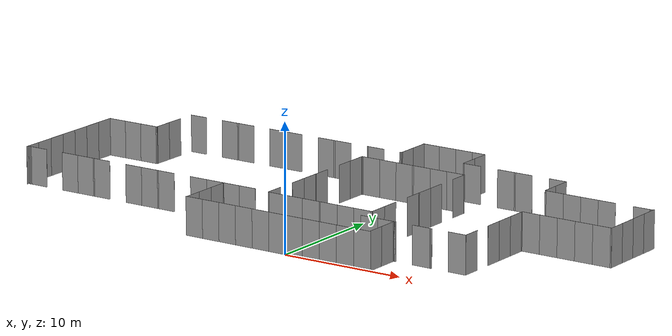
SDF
<sdf version="1.6">
 <world name="default">
  <model name="walls">
   <static>1</static>
   <link name="link">
    <visual name="visual_1">
     <pose>-8.25 0 1.5 0 -0 0</pose>
     <geometry><box><size>1.5 0.01 3</size></box></geometry>
     <material>
      <script>
       <uri>file://media/materials/scripts/</uri>
       <uri>file://media/materials/textures/</uri>
       <name>ServiceSim/PlainWall</name>
      </script>
     </material>
    </visual>
    <visual name="visual_2">
     <pose>-6.75 0 1.5 0 -0 0</pose>
     <geometry><box><size>1.5 0.01 3</size></box></geometry>
     <material>
      <script>
       <uri>file://media/materials/scripts/</uri>
       <uri>file://media/materials/textures/</uri>
       <name>ServiceSim/PlainWall</name>
      </script>
     </material>
    </visual>
    <visual name="visual_3">
     <pose>-5.25 0 1.5 0 -0 0</pose>
     <geometry><box><size>1.5 0.01 3</size></box></geometry>
     <material>
      <script>
       <uri>file://media/materials/scripts/</uri>
       <uri>file://media/materials/textures/</uri>
       <name>ServiceSim/PlainWall</name>
      </script>
     </material>
    </visual>
    <visual name="visual_4">
     <pose>-3.75 0 1.5 0 -0 0</pose>
     <geometry><box><size>1.5 0.01 3</size></box></geometry>
     <material>
      <script>
       <uri>file://media/materials/scripts/</uri>
       <uri>file://media/materials/textures/</uri>
       <name>ServiceSim/PlainWall</name>
      </script>
     </material>
    </visual>
    <visual name="visual_5">
     <pose>-2.25 0 1.5 0 -0 0</pose>
     <geometry><box><size>1.5 0.01 3</size></box></geometry>
     <material>
      <script>
       <uri>file://media/materials/scripts/</uri>
       <uri>file://media/materials/textures/</uri>
       <name>ServiceSim/PlainWall</name>
      </script>
     </material>
    </visual>
    <visual name="visual_6">
     <pose>-0.75 0 1.5 0 -0 0</pose>
     <geometry><box><size>1.5 0.01 3</size></box></geometry>
     <material>
      <script>
       <uri>file://media/materials/scripts/</uri>
       <uri>file://media/materials/textures/</uri>
       <name>ServiceSim/Elevator</name>
      </script>
     </material>
    </visual>
    <visual name="visual_7">
     <pose>0.75 0 1.5 0 -0 0</pose>
     <geometry><box><size>1.5 0.01 3</size></box></geometry>
     <material>
      <script>
       <uri>file://media/materials/scripts/</uri>
       <uri>file://media/materials/textures/</uri>
       <name>ServiceSim/Elevator</name>
      </script>
     </material>
    </visual>
    <visual name="visual_8">
     <pose>2.25 0 1.5 0 -0 0</pose>
     <geometry><box><size>1.5 0.01 3</size></box></geometry>
     <material>
      <script>
       <uri>file://media/materials/scripts/</uri>
       <uri>file://media/materials/textures/</uri>
       <name>ServiceSim/PlainWall</name>
      </script>
     </material>
    </visual>
    <visual name="visual_9">
     <pose>3.75 0 1.5 0 -0 0</pose>
     <geometry><box><size>1.5 0.01 3</size></box></geometry>
     <material>
      <script>
       <uri>file://media/materials/scripts/</uri>
       <uri>file://media/materials/textures/</uri>
       <name>ServiceSim/PlainWall</name>
      </script>
     </material>
    </visual>
    <visual name="visual_10">
     <pose>5.25 0 1.5 0 -0 0</pose>
     <geometry><box><size>1.5 0.01 3</size></box></geometry>
     <material>
      <script>
       <uri>file://media/materials/scripts/</uri>
       <uri>file://media/materials/textures/</uri>
       <name>ServiceSim/PlainWall</name>
      </script>
     </material>
    </visual>
    <visual name="visual_11">
     <pose>6.749 0 1.5 0 -0 0</pose>
     <geometry><box><size>1.5 0.01 3</size></box></geometry>
     <material>
      <script>
       <uri>file://media/materials/scripts/</uri>
       <uri>file://media/materials/textures/</uri>
       <name>ServiceSim/PlainWall</name>
      </script>
     </material>
    </visual>
    <visual name="visual_12">
     <pose>-8.25 4.6 1.5 0 -0 0</pose>
     <geometry><box><size>1.5 0.01 3</size></box></geometry>
     <material>
      <script>
       <uri>file://media/materials/scripts/</uri>
       <uri>file://media/materials/textures/</uri>
       <name>ServiceSim/PlainWall</name>
      </script>
     </material>
    </visual>
    <visual name="visual_13">
     <pose>-6.75 4.6 1.5 0 -0 0</pose>
     <geometry><box><size>1.5 0.01 3</size></box></geometry>
     <material>
      <script>
       <uri>file://media/materials/scripts/</uri>
       <uri>file://media/materials/textures/</uri>
       <name>ServiceSim/PlainWall</name>
      </script>
     </material>
    </visual>
    <visual name="visual_14">
     <pose>5.25 3.1 1.5 0 -0 0</pose>
     <geometry><box><size>1.5 0.01 3</size></box></geometry>
     <material>
      <script>
       <uri>file://media/materials/scripts/</uri>
       <uri>file://media/materials/textures/</uri>
       <name>ServiceSim/PlainWall</name>
      </script>
     </material>
    </visual>
    <visual name="visual_15">
     <pose>6.75 3.1 1.5 0 -0 0</pose>
     <geometry><box><size>1.5 0.01 3</size></box></geometry>
     <material>
      <script>
       <uri>file://media/materials/scripts/</uri>
       <uri>file://media/materials/textures/</uri>
       <name>ServiceSim/PlainWall</name>
      </script>
     </material>
    </visual>
    <visual name="visual_16">
     <pose>7.4 0.75 1.5 0 -0 1.5708</pose>
     <geometry><box><size>1.5 0.01 3</size></box></geometry>
     <material>
      <script>
       <uri>file://media/materials/scripts/</uri>
       <uri>file://media/materials/textures/</uri>
       <name>ServiceSim/PlainWall</name>
      </script>
     </material>
    </visual>
    <visual name="visual_17">
     <pose>7.4 2.25 1.5 0 -0 1.5708</pose>
     <geometry><box><size>1.5 0.01 3</size></box></geometry>
     <material>
      <script>
       <uri>file://media/materials/scripts/</uri>
       <uri>file://media/materials/textures/</uri>
       <name>ServiceSim/PlainWall</name>
      </script>
     </material>
    </visual>
    <visual name="visual_18">
     <pose>7.4 3.05 1.5 0 -0 1.5708</pose>
     <geometry><box><size>0.1 0.01 3</size></box></geometry>
     <material>
      <script>
       <uri>file://media/materials/scripts/</uri>
       <uri>file://media/materials/textures/</uri>
       <name>ServiceSim/PlainWall</name>
      </script>
     </material>
    </visual>
    <visual name="visual_19">
     <pose>7.45 3.1 1.5 0 -0 0</pose>
     <geometry><box><size>0.1 0.01 3</size></box></geometry>
     <material>
      <script>
       <uri>file://media/materials/scripts/</uri>
       <uri>file://media/materials/textures/</uri>
       <name>ServiceSim/PlainWall</name>
      </script>
     </material>
    </visual>
    <visual name="visual_20">
     <pose>7.55 3.1 1.5 0 -0 0</pose>
     <geometry><box><size>0.1 0.01 3</size></box></geometry>
     <material>
      <script>
       <uri>file://media/materials/scripts/</uri>
       <uri>file://media/materials/textures/</uri>
       <name>ServiceSim/PlainWall</name>
      </script>
     </material>
    </visual>
    <visual name="visual_21">
     <pose>9.75 3.1 1.5 0 -0 0</pose>
     <geometry><box><size>1.5 0.01 3</size></box></geometry>
     <material>
      <script>
       <uri>file://media/materials/scripts/</uri>
       <uri>file://media/materials/textures/</uri>
       <name>ServiceSim/PlainWall</name>
      </script>
     </material>
    </visual>
    <visual name="visual_22">
     <pose>10.55 3.1 1.5 0 -0 0</pose>
     <geometry><box><size>0.1 0.01 3</size></box></geometry>
     <material>
      <script>
       <uri>file://media/materials/scripts/</uri>
       <uri>file://media/materials/textures/</uri>
       <name>ServiceSim/PlainWall</name>
      </script>
     </material>
    </visual>
    <visual name="visual_23">
     <pose>10.65 3.1 1.5 0 -0 0</pose>
     <geometry><box><size>0.1 0.01 3</size></box></geometry>
     <material>
      <script>
       <uri>file://media/materials/scripts/</uri>
       <uri>file://media/materials/textures/</uri>
       <name>ServiceSim/PlainWall</name>
      </script>
     </material>
    </visual>
    <visual name="visual_24">
     <pose>12.85 3.1 1.5 0 -0 0</pose>
     <geometry><box><size>1.5 0.01 3</size></box></geometry>
     <material>
      <script>
       <uri>file://media/materials/scripts/</uri>
       <uri>file://media/materials/textures/</uri>
       <name>ServiceSim/PlainWall</name>
      </script>
     </material>
    </visual>
    <visual name="visual_25">
     <pose>13.6 3.85 1.5 0 -0 1.5708</pose>
     <geometry><box><size>1.5 0.01 3</size></box></geometry>
     <material>
      <script>
       <uri>file://media/materials/scripts/</uri>
       <uri>file://media/materials/textures/</uri>
       <name>ServiceSim/PlainWall</name>
      </script>
     </material>
    </visual>
    <visual name="visual_26">
     <pose>13.6 6.75 1.5 0 -0 1.5708</pose>
     <geometry><box><size>1.5 0.01 3</size></box></geometry>
     <material>
      <script>
       <uri>file://media/materials/scripts/</uri>
       <uri>file://media/materials/textures/</uri>
       <name>ServiceSim/PlainWall</name>
      </script>
     </material>
    </visual>
    <visual name="visual_27">
     <pose>13.6 8.25 1.5 0 -0 1.5708</pose>
     <geometry><box><size>1.5 0.01 3</size></box></geometry>
     <material>
      <script>
       <uri>file://media/materials/scripts/</uri>
       <uri>file://media/materials/textures/</uri>
       <name>ServiceSim/PlainWall</name>
      </script>
     </material>
    </visual>
    <visual name="visual_28">
     <pose>13.6 9.75 1.5 0 -0 1.5708</pose>
     <geometry><box><size>1.5 0.01 3</size></box></geometry>
     <material>
      <script>
       <uri>file://media/materials/scripts/</uri>
       <uri>file://media/materials/textures/</uri>
       <name>ServiceSim/PlainWall</name>
      </script>
     </material>
    </visual>
    <visual name="visual_29">
     <pose>13.6 10.55 1.5 0 -0 1.5708</pose>
     <geometry><box><size>0.1 0.01 3</size></box></geometry>
     <material>
      <script>
       <uri>file://media/materials/scripts/</uri>
       <uri>file://media/materials/textures/</uri>
       <name>ServiceSim/PlainWall</name>
      </script>
     </material>
    </visual>
    <visual name="visual_30">
     <pose>14.35 10.6 1.5 0 -0 0</pose>
     <geometry><box><size>1.5 0.01 3</size></box></geometry>
     <material>
      <script>
       <uri>file://media/materials/scripts/</uri>
       <uri>file://media/materials/textures/</uri>
       <name>ServiceSim/PlainWall</name>
      </script>
     </material>
    </visual>
    <visual name="visual_31">
     <pose>15.85 10.6 1.5 0 -0 0</pose>
     <geometry><box><size>1.5 0.01 3</size></box></geometry>
     <material>
      <script>
       <uri>file://media/materials/scripts/</uri>
       <uri>file://media/materials/textures/</uri>
       <name>ServiceSim/PlainWall</name>
      </script>
     </material>
    </visual>
    <visual name="visual_32">
     <pose>17.35 10.6 1.5 0 -0 0</pose>
     <geometry><box><size>1.5 0.01 3</size></box></geometry>
     <material>
      <script>
       <uri>file://media/materials/scripts/</uri>
       <uri>file://media/materials/textures/</uri>
       <name>ServiceSim/PlainWall</name>
      </script>
     </material>
    </visual>
    <visual name="visual_33">
     <pose>18.85 10.6 1.5 0 -0 0</pose>
     <geometry><box><size>1.5 0.01 3</size></box></geometry>
     <material>
      <script>
       <uri>file://media/materials/scripts/</uri>
       <uri>file://media/materials/textures/</uri>
       <name>ServiceSim/PlainWall</name>
      </script>
     </material>
    </visual>
    <visual name="visual_34">
     <pose>20.35 10.6 1.5 0 -0 0</pose>
     <geometry><box><size>1.5 0.01 3</size></box></geometry>
     <material>
      <script>
       <uri>file://media/materials/scripts/</uri>
       <uri>file://media/materials/textures/</uri>
       <name>ServiceSim/PlainWall</name>
      </script>
     </material>
    </visual>
    <visual name="visual_35">
     <pose>21.15 10.6 1.5 0 -0 0</pose>
     <geometry><box><size>0.1 0.01 3</size></box></geometry>
     <material>
      <script>
       <uri>file://media/materials/scripts/</uri>
       <uri>file://media/materials/textures/</uri>
       <name>ServiceSim/PlainWall</name>
      </script>
     </material>
    </visual>
    <visual name="visual_36">
     <pose>21.2 11.35 1.5 0 -0 1.5708</pose>
     <geometry><box><size>1.5 0.01 3</size></box></geometry>
     <material>
      <script>
       <uri>file://media/materials/scripts/</uri>
       <uri>file://media/materials/textures/</uri>
       <name>ServiceSim/PlainWall</name>
      </script>
     </material>
    </visual>
    <visual name="visual_37">
     <pose>21.2 12.85 1.5 0 -0 1.5708</pose>
     <geometry><box><size>1.5 0.01 3</size></box></geometry>
     <material>
      <script>
       <uri>file://media/materials/scripts/</uri>
       <uri>file://media/materials/textures/</uri>
       <name>ServiceSim/PlainWall</name>
      </script>
     </material>
    </visual>
    <visual name="visual_38">
     <pose>21.2 14.35 1.5 0 -0 1.5708</pose>
     <geometry><box><size>1.5 0.01 3</size></box></geometry>
     <material>
      <script>
       <uri>file://media/materials/scripts/</uri>
       <uri>file://media/materials/textures/</uri>
       <name>ServiceSim/PlainWall</name>
      </script>
     </material>
    </visual>
    <visual name="visual_39">
     <pose>21.2 15.85 1.5 0 -0 1.5708</pose>
     <geometry><box><size>1.5 0.01 3</size></box></geometry>
     <material>
      <script>
       <uri>file://media/materials/scripts/</uri>
       <uri>file://media/materials/textures/</uri>
       <name>ServiceSim/PlainWall</name>
      </script>
     </material>
    </visual>
    <visual name="visual_40">
     <pose>20.95 16.4 1.5 0 -0 0</pose>
     <geometry><box><size>0.1 0.01 3</size></box></geometry>
     <material>
      <script>
       <uri>file://media/materials/scripts/</uri>
       <uri>file://media/materials/textures/</uri>
       <name>ServiceSim/PlainWall</name>
      </script>
     </material>
    </visual>
    <visual name="visual_41">
     <pose>21.05 16.4 1.5 0 -0 0</pose>
     <geometry><box><size>0.1 0.01 3</size></box></geometry>
     <material>
      <script>
       <uri>file://media/materials/scripts/</uri>
       <uri>file://media/materials/textures/</uri>
       <name>ServiceSim/PlainWall</name>
      </script>
     </material>
    </visual>
    <visual name="visual_42">
     <pose>21.15 16.4 1.5 0 -0 0</pose>
     <geometry><box><size>0.1 0.01 3</size></box></geometry>
     <material>
      <script>
       <uri>file://media/materials/scripts/</uri>
       <uri>file://media/materials/textures/</uri>
       <name>ServiceSim/PlainWall</name>
      </script>
     </material>
    </visual>
    <visual name="visual_43">
     <pose>20.25 16.4 1.5 0 -0 0</pose>
     <geometry><box><size>1.5 0.01 3</size></box></geometry>
     <material>
      <script>
       <uri>file://media/materials/scripts/</uri>
       <uri>file://media/materials/textures/</uri>
       <name>ServiceSim/PlainWall</name>
      </script>
     </material>
    </visual>
    <visual name="visual_44">
     <pose>17.25 16.4 1.5 0 -0 0</pose>
     <geometry><box><size>1.5 0.01 3</size></box></geometry>
     <material>
      <script>
       <uri>file://media/materials/scripts/</uri>
       <uri>file://media/materials/textures/</uri>
       <name>ServiceSim/PlainWall</name>
      </script>
     </material>
    </visual>
    <visual name="visual_45">
     <pose>15.75 16.4 1.5 0 -0 0</pose>
     <geometry><box><size>1.5 0.01 3</size></box></geometry>
     <material>
      <script>
       <uri>file://media/materials/scripts/</uri>
       <uri>file://media/materials/textures/</uri>
       <name>ServiceSim/PlainWall</name>
      </script>
     </material>
    </visual>
    <visual name="visual_46">
     <pose>14.25 16.4 1.5 0 -0 0</pose>
     <geometry><box><size>1.5 0.01 3</size></box></geometry>
     <material>
      <script>
       <uri>file://media/materials/scripts/</uri>
       <uri>file://media/materials/textures/</uri>
       <name>ServiceSim/PlainWall</name>
      </script>
     </material>
    </visual>
    <visual name="visual_47">
     <pose>12.75 16.4 1.5 0 -0 0</pose>
     <geometry><box><size>1.5 0.01 3</size></box></geometry>
     <material>
      <script>
       <uri>file://media/materials/scripts/</uri>
       <uri>file://media/materials/textures/</uri>
       <name>ServiceSim/PlainWall</name>
      </script>
     </material>
    </visual>
    <visual name="visual_48">
     <pose>11.95 16.4 1.5 0 -0 0</pose>
     <geometry><box><size>0.1 0.01 3</size></box></geometry>
     <material>
      <script>
       <uri>file://media/materials/scripts/</uri>
       <uri>file://media/materials/textures/</uri>
       <name>ServiceSim/PlainWall</name>
      </script>
     </material>
    </visual>
    <visual name="visual_49">
     <pose>11.9 17.15 1.5 0 -0 1.5708</pose>
     <geometry><box><size>1.5 0.01 3</size></box></geometry>
     <material>
      <script>
       <uri>file://media/materials/scripts/</uri>
       <uri>file://media/materials/textures/</uri>
       <name>ServiceSim/PlainWall</name>
      </script>
     </material>
    </visual>
    <visual name="visual_50">
     <pose>11.9 18.65 1.5 0 -0 1.5708</pose>
     <geometry><box><size>1.5 0.01 3</size></box></geometry>
     <material>
      <script>
       <uri>file://media/materials/scripts/</uri>
       <uri>file://media/materials/textures/</uri>
       <name>ServiceSim/PlainWall</name>
      </script>
     </material>
    </visual>
    <visual name="visual_51">
     <pose>11.15 19.4 1.5 0 -0 0</pose>
     <geometry><box><size>1.5 0.01 3</size></box></geometry>
     <material>
      <script>
       <uri>file://media/materials/scripts/</uri>
       <uri>file://media/materials/textures/</uri>
       <name>ServiceSim/PlainWall</name>
      </script>
     </material>
    </visual>
    <visual name="visual_52">
     <pose>8.15 19.4 1.5 0 -0 0</pose>
     <geometry><box><size>1.5 0.01 3</size></box></geometry>
     <material>
      <script>
       <uri>file://media/materials/scripts/</uri>
       <uri>file://media/materials/textures/</uri>
       <name>ServiceSim/PlainWall</name>
      </script>
     </material>
    </visual>
    <visual name="visual_53">
     <pose>7.35 19.4 1.5 0 -0 0</pose>
     <geometry><box><size>0.1 0.01 3</size></box></geometry>
     <material>
      <script>
       <uri>file://media/materials/scripts/</uri>
       <uri>file://media/materials/textures/</uri>
       <name>ServiceSim/PlainWall</name>
      </script>
     </material>
    </visual>
    <visual name="visual_54">
     <pose>6.55 19.4 1.5 0 -0 0</pose>
     <geometry><box><size>1.5 0.01 3</size></box></geometry>
     <material>
      <script>
       <uri>file://media/materials/scripts/</uri>
       <uri>file://media/materials/textures/</uri>
       <name>ServiceSim/PlainWall</name>
      </script>
     </material>
    </visual>
    <visual name="visual_55">
     <pose>3.55 19.4 1.5 0 -0 0</pose>
     <geometry><box><size>1.5 0.01 3</size></box></geometry>
     <material>
      <script>
       <uri>file://media/materials/scripts/</uri>
       <uri>file://media/materials/textures/</uri>
       <name>ServiceSim/PlainWall</name>
      </script>
     </material>
    </visual>
    <visual name="visual_56">
     <pose>2.75 19.4 1.5 0 -0 0</pose>
     <geometry><box><size>0.1 0.01 3</size></box></geometry>
     <material>
      <script>
       <uri>file://media/materials/scripts/</uri>
       <uri>file://media/materials/textures/</uri>
       <name>ServiceSim/PlainWall</name>
      </script>
     </material>
    </visual>
    <visual name="visual_57">
     <pose>2.7 19.45 1.5 0 -0 1.5708</pose>
     <geometry><box><size>0.1 0.01 3</size></box></geometry>
     <material>
      <script>
       <uri>file://media/materials/scripts/</uri>
       <uri>file://media/materials/textures/</uri>
       <name>ServiceSim/PlainWall</name>
      </script>
     </material>
    </visual>
    <visual name="visual_58">
     <pose>2.7 20.25 1.5 0 -0 1.5708</pose>
     <geometry><box><size>1.5 0.01 3</size></box></geometry>
     <material>
      <script>
       <uri>file://media/materials/scripts/</uri>
       <uri>file://media/materials/textures/</uri>
       <name>ServiceSim/PlainWall</name>
      </script>
     </material>
    </visual>
    <visual name="visual_59">
     <pose>2.7 21.75 1.5 0 -0 1.5708</pose>
     <geometry><box><size>1.5 0.01 3</size></box></geometry>
     <material>
      <script>
       <uri>file://media/materials/scripts/</uri>
       <uri>file://media/materials/textures/</uri>
       <name>ServiceSim/PlainWall</name>
      </script>
     </material>
    </visual>
    <visual name="visual_60">
     <pose>1.95 22.5 1.5 0 -0 0</pose>
     <geometry><box><size>1.5 0.01 3</size></box></geometry>
     <material>
      <script>
       <uri>file://media/materials/scripts/</uri>
       <uri>file://media/materials/textures/</uri>
       <name>ServiceSim/PlainWall</name>
      </script>
     </material>
    </visual>
    <visual name="visual_61">
     <pose>0.75 22.5 1.5 0 -0 0</pose>
     <geometry><box><size>1.5 0.01 3</size></box></geometry>
     <material>
      <script>
       <uri>file://media/materials/scripts/</uri>
       <uri>file://media/materials/textures/</uri>
       <name>ServiceSim/PlainWall</name>
      </script>
     </material>
    </visual>
    <visual name="visual_62">
     <pose>-0.75 22.5 1.5 0 -0 0</pose>
     <geometry><box><size>1.5 0.01 3</size></box></geometry>
     <material>
      <script>
       <uri>file://media/materials/scripts/</uri>
       <uri>file://media/materials/textures/</uri>
       <name>ServiceSim/PlainWall</name>
      </script>
     </material>
    </visual>
    <visual name="visual_63">
     <pose>-2.25 22.5 1.5 0 -0 0</pose>
     <geometry><box><size>1.5 0.01 3</size></box></geometry>
     <material>
      <script>
       <uri>file://media/materials/scripts/</uri>
       <uri>file://media/materials/textures/</uri>
       <name>ServiceSim/Door</name>
      </script>
     </material>
    </visual>
    <visual name="visual_64">
     <pose>-2.9 21.75 1.5 0 -0 1.5708</pose>
     <geometry><box><size>1.5 0.01 3</size></box></geometry>
     <material>
      <script>
       <uri>file://media/materials/scripts/</uri>
       <uri>file://media/materials/textures/</uri>
       <name>ServiceSim/PlainWall</name>
      </script>
     </material>
    </visual>
    <visual name="visual_65">
     <pose>-2.9 20.25 1.5 0 -0 1.5708</pose>
     <geometry><box><size>1.5 0.01 3</size></box></geometry>
     <material>
      <script>
       <uri>file://media/materials/scripts/</uri>
       <uri>file://media/materials/textures/</uri>
       <name>ServiceSim/PlainWall</name>
      </script>
     </material>
    </visual>
    <visual name="visual_66">
     <pose>-2.9 19.45 1.5 0 -0 1.5708</pose>
     <geometry><box><size>0.1 0.01 3</size></box></geometry>
     <material>
      <script>
       <uri>file://media/materials/scripts/</uri>
       <uri>file://media/materials/textures/</uri>
       <name>ServiceSim/PlainWall</name>
      </script>
     </material>
    </visual>
    <visual name="visual_67">
     <pose>-2.95 19.4 1.5 0 -0 0</pose>
     <geometry><box><size>0.1 0.01 3</size></box></geometry>
     <material>
      <script>
       <uri>file://media/materials/scripts/</uri>
       <uri>file://media/materials/textures/</uri>
       <name>ServiceSim/PlainWall</name>
      </script>
     </material>
    </visual>
    <visual name="visual_68">
     <pose>-3.05 19.4 1.5 0 -0 0</pose>
     <geometry><box><size>0.1 0.01 3</size></box></geometry>
     <material>
      <script>
       <uri>file://media/materials/scripts/</uri>
       <uri>file://media/materials/textures/</uri>
       <name>ServiceSim/PlainWall</name>
      </script>
     </material>
    </visual>
    <visual name="visual_69">
     <pose>-5.25 19.4 1.5 0 -0 0</pose>
     <geometry><box><size>1.5 0.01 3</size></box></geometry>
     <material>
      <script>
       <uri>file://media/materials/scripts/</uri>
       <uri>file://media/materials/textures/</uri>
       <name>ServiceSim/PlainWall</name>
      </script>
     </material>
    </visual>
    <visual name="visual_70">
     <pose>-6.05 19.4 1.5 0 -0 0</pose>
     <geometry><box><size>0.1 0.01 3</size></box></geometry>
     <material>
      <script>
       <uri>file://media/materials/scripts/</uri>
       <uri>file://media/materials/textures/</uri>
       <name>ServiceSim/PlainWall</name>
      </script>
     </material>
    </visual>
    <visual name="visual_71">
     <pose>-8.35 19.4 1.5 0 -0 0</pose>
     <geometry><box><size>1.5 0.01 3</size></box></geometry>
     <material>
      <script>
       <uri>file://media/materials/scripts/</uri>
       <uri>file://media/materials/textures/</uri>
       <name>ServiceSim/PlainWall</name>
      </script>
     </material>
    </visual>
    <visual name="visual_72">
     <pose>-9.15 19.4 1.5 0 -0 0</pose>
     <geometry><box><size>0.1 0.01 3</size></box></geometry>
     <material>
      <script>
       <uri>file://media/materials/scripts/</uri>
       <uri>file://media/materials/textures/</uri>
       <name>ServiceSim/PlainWall</name>
      </script>
     </material>
    </visual>
    <visual name="visual_73">
     <pose>-9.95 19.4 1.5 0 -0 0</pose>
     <geometry><box><size>1.5 0.01 3</size></box></geometry>
     <material>
      <script>
       <uri>file://media/materials/scripts/</uri>
       <uri>file://media/materials/textures/</uri>
       <name>ServiceSim/PlainWall</name>
      </script>
     </material>
    </visual>
    <visual name="visual_74">
     <pose>-12.95 19.4 1.5 0 -0 0</pose>
     <geometry><box><size>1.5 0.01 3</size></box></geometry>
     <material>
      <script>
       <uri>file://media/materials/scripts/</uri>
       <uri>file://media/materials/textures/</uri>
       <name>ServiceSim/PlainWall</name>
      </script>
     </material>
    </visual>
    <visual name="visual_75">
     <pose>-13.75 19.4 1.5 0 -0 0</pose>
     <geometry><box><size>0.1 0.01 3</size></box></geometry>
     <material>
      <script>
       <uri>file://media/materials/scripts/</uri>
       <uri>file://media/materials/textures/</uri>
       <name>ServiceSim/PlainWall</name>
      </script>
     </material>
    </visual>
    <visual name="visual_76">
     <pose>-14.55 19.4 1.5 0 -0 0</pose>
     <geometry><box><size>1.5 0.01 3</size></box></geometry>
     <material>
      <script>
       <uri>file://media/materials/scripts/</uri>
       <uri>file://media/materials/textures/</uri>
       <name>ServiceSim/PlainWall</name>
      </script>
     </material>
    </visual>
    <visual name="visual_77">
     <pose>-18.35 19.4 1.5 0 -0 0</pose>
     <geometry><box><size>0.1 0.01 3</size></box></geometry>
     <material>
      <script>
       <uri>file://media/materials/scripts/</uri>
       <uri>file://media/materials/textures/</uri>
       <name>ServiceSim/PlainWall</name>
      </script>
     </material>
    </visual>
    <visual name="visual_78">
     <pose>-17.55 19.4 1.5 0 -0 0</pose>
     <geometry><box><size>1.5 0.01 3</size></box></geometry>
     <material>
      <script>
       <uri>file://media/materials/scripts/</uri>
       <uri>file://media/materials/textures/</uri>
       <name>ServiceSim/PlainWall</name>
      </script>
     </material>
    </visual>
    <visual name="visual_79">
     <pose>-19.15 19.4 1.5 0 -0 0</pose>
     <geometry><box><size>1.5 0.01 3</size></box></geometry>
     <material>
      <script>
       <uri>file://media/materials/scripts/</uri>
       <uri>file://media/materials/textures/</uri>
       <name>ServiceSim/PlainWall</name>
      </script>
     </material>
    </visual>
    <visual name="visual_80">
     <pose>-22.15 19.4 1.5 0 -0 0</pose>
     <geometry><box><size>1.5 0.01 3</size></box></geometry>
     <material>
      <script>
       <uri>file://media/materials/scripts/</uri>
       <uri>file://media/materials/textures/</uri>
       <name>ServiceSim/PlainWall</name>
      </script>
     </material>
    </visual>
    <visual name="visual_81">
     <pose>-22.9 17.25 1.5 0 -0 1.5708</pose>
     <geometry><box><size>1.5 0.01 3</size></box></geometry>
     <material>
      <script>
       <uri>file://media/materials/scripts/</uri>
       <uri>file://media/materials/textures/</uri>
       <name>ServiceSim/PlainWall</name>
      </script>
     </material>
    </visual>
    <visual name="visual_82">
     <pose>-22.9 15.75 1.5 0 -0 1.5708</pose>
     <geometry><box><size>1.5 0.01 3</size></box></geometry>
     <material>
      <script>
       <uri>file://media/materials/scripts/</uri>
       <uri>file://media/materials/textures/</uri>
       <name>ServiceSim/PlainWall</name>
      </script>
     </material>
    </visual>
    <visual name="visual_83">
     <pose>-22.9 14.95 1.5 0 -0 1.5708</pose>
     <geometry><box><size>0.1 0.01 3</size></box></geometry>
     <material>
      <script>
       <uri>file://media/materials/scripts/</uri>
       <uri>file://media/materials/textures/</uri>
       <name>ServiceSim/PlainWall</name>
      </script>
     </material>
    </visual>
    <visual name="visual_84">
     <pose>-22.95 14.9 1.5 0 -0 0</pose>
     <geometry><box><size>0.1 0.01 3</size></box></geometry>
     <material>
      <script>
       <uri>file://media/materials/scripts/</uri>
       <uri>file://media/materials/textures/</uri>
       <name>ServiceSim/PlainWall</name>
      </script>
     </material>
    </visual>
    <visual name="visual_85">
     <pose>-23.75 14.9 1.5 0 -0 0</pose>
     <geometry><box><size>1.5 0.01 3</size></box></geometry>
     <material>
      <script>
       <uri>file://media/materials/scripts/</uri>
       <uri>file://media/materials/textures/</uri>
       <name>ServiceSim/PlainWall</name>
      </script>
     </material>
    </visual>
    <visual name="visual_86">
     <pose>-25.25 14.9 1.5 0 -0 0</pose>
     <geometry><box><size>1.5 0.01 3</size></box></geometry>
     <material>
      <script>
       <uri>file://media/materials/scripts/</uri>
       <uri>file://media/materials/textures/</uri>
       <name>ServiceSim/PlainWall</name>
      </script>
     </material>
    </visual>
    <visual name="visual_87">
     <pose>-26.75 14.9 1.5 0 -0 0</pose>
     <geometry><box><size>1.5 0.01 3</size></box></geometry>
     <material>
      <script>
       <uri>file://media/materials/scripts/</uri>
       <uri>file://media/materials/textures/</uri>
       <name>ServiceSim/PlainWall</name>
      </script>
     </material>
    </visual>
    <visual name="visual_88">
     <pose>-27.5 14.15 1.5 0 -0 1.5708</pose>
     <geometry><box><size>1.5 0.01 3</size></box></geometry>
     <material>
      <script>
       <uri>file://media/materials/scripts/</uri>
       <uri>file://media/materials/textures/</uri>
       <name>ServiceSim/PlainWall</name>
      </script>
     </material>
    </visual>
    <visual name="visual_89">
     <pose>-27.5 12.65 1.5 0 -0 1.5708</pose>
     <geometry><box><size>1.5 0.01 3</size></box></geometry>
     <material>
      <script>
       <uri>file://media/materials/scripts/</uri>
       <uri>file://media/materials/textures/</uri>
       <name>ServiceSim/PlainWall</name>
      </script>
     </material>
    </visual>
    <visual name="visual_90">
     <pose>-27.5 11.15 1.5 0 -0 1.5708</pose>
     <geometry><box><size>1.5 0.01 3</size></box></geometry>
     <material>
      <script>
       <uri>file://media/materials/scripts/</uri>
       <uri>file://media/materials/textures/</uri>
       <name>ServiceSim/PlainWall</name>
      </script>
     </material>
    </visual>
    <visual name="visual_91">
     <pose>-27.5 9.65 1.5 0 -0 1.5708</pose>
     <geometry><box><size>1.5 0.01 3</size></box></geometry>
     <material>
      <script>
       <uri>file://media/materials/scripts/</uri>
       <uri>file://media/materials/textures/</uri>
       <name>ServiceSim/PlainWall</name>
      </script>
     </material>
    </visual>
    <visual name="visual_92">
     <pose>-27.5 8.15 1.5 0 -0 1.5708</pose>
     <geometry><box><size>1.5 0.01 3</size></box></geometry>
     <material>
      <script>
       <uri>file://media/materials/scripts/</uri>
       <uri>file://media/materials/textures/</uri>
       <name>ServiceSim/PlainWall</name>
      </script>
     </material>
    </visual>
    <visual name="visual_93">
     <pose>-27.5 6.65 1.5 0 -0 1.5708</pose>
     <geometry><box><size>1.5 0.01 3</size></box></geometry>
     <material>
      <script>
       <uri>file://media/materials/scripts/</uri>
       <uri>file://media/materials/textures/</uri>
       <name>ServiceSim/PlainWall</name>
      </script>
     </material>
    </visual>
    <visual name="visual_94">
     <pose>-27.5 5.15 1.5 0 -0 1.5708</pose>
     <geometry><box><size>1.5 0.01 3</size></box></geometry>
     <material>
      <script>
       <uri>file://media/materials/scripts/</uri>
       <uri>file://media/materials/textures/</uri>
       <name>ServiceSim/PlainWall</name>
      </script>
     </material>
    </visual>
    <visual name="visual_95">
     <pose>-27.45 4.6 1.5 0 -0 0</pose>
     <geometry><box><size>0.1 0.01 3</size></box></geometry>
     <material>
      <script>
       <uri>file://media/materials/scripts/</uri>
       <uri>file://media/materials/textures/</uri>
       <name>ServiceSim/PlainWall</name>
      </script>
     </material>
    </visual>
    <visual name="visual_96">
     <pose>-27.35 4.6 1.5 0 -0 0</pose>
     <geometry><box><size>0.1 0.01 3</size></box></geometry>
     <material>
      <script>
       <uri>file://media/materials/scripts/</uri>
       <uri>file://media/materials/textures/</uri>
       <name>ServiceSim/PlainWall</name>
      </script>
     </material>
    </visual>
    <visual name="visual_97">
     <pose>-27.25 4.6 1.5 0 -0 0</pose>
     <geometry><box><size>0.1 0.01 3</size></box></geometry>
     <material>
      <script>
       <uri>file://media/materials/scripts/</uri>
       <uri>file://media/materials/textures/</uri>
       <name>ServiceSim/PlainWall</name>
      </script>
     </material>
    </visual>
    <visual name="visual_98">
     <pose>-26.45 4.6 1.5 0 -0 0</pose>
     <geometry><box><size>1.5 0.01 3</size></box></geometry>
     <material>
      <script>
       <uri>file://media/materials/scripts/</uri>
       <uri>file://media/materials/textures/</uri>
       <name>ServiceSim/PlainWall</name>
      </script>
     </material>
    </visual>
    <visual name="visual_99">
     <pose>-23.45 4.6 1.5 0 -0 0</pose>
     <geometry><box><size>1.5 0.01 3</size></box></geometry>
     <material>
      <script>
       <uri>file://media/materials/scripts/</uri>
       <uri>file://media/materials/textures/</uri>
       <name>ServiceSim/PlainWall</name>
      </script>
     </material>
    </visual>
    <visual name="visual_100">
     <pose>-21.95 4.6 1.5 0 -0 0</pose>
     <geometry><box><size>1.5 0.01 3</size></box></geometry>
     <material>
      <script>
       <uri>file://media/materials/scripts/</uri>
       <uri>file://media/materials/textures/</uri>
       <name>ServiceSim/PlainWall</name>
      </script>
     </material>
    </visual>
    <visual name="visual_101">
     <pose>-21.15 4.6 1.5 0 -0 0</pose>
     <geometry><box><size>0.1 0.01 3</size></box></geometry>
     <material>
      <script>
       <uri>file://media/materials/scripts/</uri>
       <uri>file://media/materials/textures/</uri>
       <name>ServiceSim/PlainWall</name>
      </script>
     </material>
    </visual>
    <visual name="visual_102">
     <pose>-20.35 4.6 1.5 0 -0 0</pose>
     <geometry><box><size>1.5 0.01 3</size></box></geometry>
     <material>
      <script>
       <uri>file://media/materials/scripts/</uri>
       <uri>file://media/materials/textures/</uri>
       <name>ServiceSim/PlainWall</name>
      </script>
     </material>
    </visual>
    <visual name="visual_103">
     <pose>-17.35 4.6 1.5 0 -0 0</pose>
     <geometry><box><size>1.5 0.01 3</size></box></geometry>
     <material>
      <script>
       <uri>file://media/materials/scripts/</uri>
       <uri>file://media/materials/textures/</uri>
       <name>ServiceSim/PlainWall</name>
      </script>
     </material>
    </visual>
    <visual name="visual_104">
     <pose>-15.85 4.6 1.5 0 -0 0</pose>
     <geometry><box><size>1.5 0.01 3</size></box></geometry>
     <material>
      <script>
       <uri>file://media/materials/scripts/</uri>
       <uri>file://media/materials/textures/</uri>
       <name>ServiceSim/PlainWall</name>
      </script>
     </material>
    </visual>
    <visual name="visual_105">
     <pose>-15.05 4.6 1.5 0 -0 0</pose>
     <geometry><box><size>0.1 0.01 3</size></box></geometry>
     <material>
      <script>
       <uri>file://media/materials/scripts/</uri>
       <uri>file://media/materials/textures/</uri>
       <name>ServiceSim/PlainWall</name>
      </script>
     </material>
    </visual>
    <visual name="visual_106">
     <pose>-14.25 4.6 1.5 0 -0 0</pose>
     <geometry><box><size>1.5 0.01 3</size></box></geometry>
     <material>
      <script>
       <uri>file://media/materials/scripts/</uri>
       <uri>file://media/materials/textures/</uri>
       <name>ServiceSim/PlainWall</name>
      </script>
     </material>
    </visual>
    <visual name="visual_107">
     <pose>-11.25 4.6 1.5 0 -0 0</pose>
     <geometry><box><size>1.5 0.01 3</size></box></geometry>
     <material>
      <script>
       <uri>file://media/materials/scripts/</uri>
       <uri>file://media/materials/textures/</uri>
       <name>ServiceSim/PlainWall</name>
      </script>
     </material>
    </visual>
    <visual name="visual_108">
     <pose>-9.75 4.6 1.5 0 -0 0</pose>
     <geometry><box><size>1.5 0.01 3</size></box></geometry>
     <material>
      <script>
       <uri>file://media/materials/scripts/</uri>
       <uri>file://media/materials/textures/</uri>
       <name>ServiceSim/PlainWall</name>
      </script>
     </material>
    </visual>
    <visual name="visual_109">
     <pose>-8.95 4.6 1.5 0 -0 0</pose>
     <geometry><box><size>0.1 0.01 3</size></box></geometry>
     <material>
      <script>
       <uri>file://media/materials/scripts/</uri>
       <uri>file://media/materials/textures/</uri>
       <name>ServiceSim/PlainWall</name>
      </script>
     </material>
    </visual>
    <visual name="visual_110">
     <pose>-8.9 4.55 1.5 0 -0 1.5708</pose>
     <geometry><box><size>0.1 0.01 3</size></box></geometry>
     <material>
      <script>
       <uri>file://media/materials/scripts/</uri>
       <uri>file://media/materials/textures/</uri>
       <name>ServiceSim/PlainWall</name>
      </script>
     </material>
    </visual>
    <visual name="visual_111">
     <pose>-8.9 3.75 1.5 0 -0 1.5708</pose>
     <geometry><box><size>1.5 0.01 3</size></box></geometry>
     <material>
      <script>
       <uri>file://media/materials/scripts/</uri>
       <uri>file://media/materials/textures/</uri>
       <name>ServiceSim/PlainWall</name>
      </script>
     </material>
    </visual>
    <visual name="visual_112">
     <pose>-8.9 2.25 1.5 0 -0 1.5708</pose>
     <geometry><box><size>1.5 0.01 3</size></box></geometry>
     <material>
      <script>
       <uri>file://media/materials/scripts/</uri>
       <uri>file://media/materials/textures/</uri>
       <name>ServiceSim/PlainWall</name>
      </script>
     </material>
    </visual>
    <visual name="visual_113">
     <pose>-8.9 0.75 1.5 0 -0 1.5708</pose>
     <geometry><box><size>1.5 0.01 3</size></box></geometry>
     <material>
      <script>
       <uri>file://media/materials/scripts/</uri>
       <uri>file://media/materials/textures/</uri>
       <name>ServiceSim/PlainWall</name>
      </script>
     </material>
    </visual>
    <visual name="visual_114">
     <pose>-4.65 4.4 1.5 0 -0 0</pose>
     <geometry><box><size>0.1 0.01 3</size></box></geometry>
     <material>
      <script>
       <uri>file://media/materials/scripts/</uri>
       <uri>file://media/materials/textures/</uri>
       <name>ServiceSim/PlainWall</name>
      </script>
     </material>
    </visual>
    <visual name="visual_115">
     <pose>-3.85 4.4 1.5 0 -0 0</pose>
     <geometry><box><size>1.5 0.01 3</size></box></geometry>
     <material>
      <script>
       <uri>file://media/materials/scripts/</uri>
       <uri>file://media/materials/textures/</uri>
       <name>ServiceSim/PlainWall</name>
      </script>
     </material>
    </visual>
    <visual name="visual_116">
     <pose>-2.35 4.4 1.5 0 -0 0</pose>
     <geometry><box><size>1.5 0.01 3</size></box></geometry>
     <material>
      <script>
       <uri>file://media/materials/scripts/</uri>
       <uri>file://media/materials/textures/</uri>
       <name>ServiceSim/PlainWall</name>
      </script>
     </material>
    </visual>
    <visual name="visual_117">
     <pose>-0.85 4.4 1.5 0 -0 0</pose>
     <geometry><box><size>1.5 0.01 3</size></box></geometry>
     <material>
      <script>
       <uri>file://media/materials/scripts/</uri>
       <uri>file://media/materials/textures/</uri>
       <name>ServiceSim/PlainWall</name>
      </script>
     </material>
    </visual>
    <visual name="visual_118">
     <pose>-0.05 4.4 1.5 0 -0 0</pose>
     <geometry><box><size>0.1 0.01 3</size></box></geometry>
     <material>
      <script>
       <uri>file://media/materials/scripts/</uri>
       <uri>file://media/materials/textures/</uri>
       <name>ServiceSim/PlainWall</name>
      </script>
     </material>
    </visual>
    <visual name="visual_119">
     <pose>0.75 4.4 1.5 0 -0 0</pose>
     <geometry><box><size>1.5 0.01 3</size></box></geometry>
     <material>
      <script>
       <uri>file://media/materials/scripts/</uri>
       <uri>file://media/materials/textures/</uri>
       <name>ServiceSim/PlainWall</name>
      </script>
     </material>
    </visual>
    <visual name="visual_120">
     <pose>2.25 4.4 1.5 0 -0 0</pose>
     <geometry><box><size>1.5 0.01 3</size></box></geometry>
     <material>
      <script>
       <uri>file://media/materials/scripts/</uri>
       <uri>file://media/materials/textures/</uri>
       <name>ServiceSim/PlainWall</name>
      </script>
     </material>
    </visual>
    <visual name="visual_121">
     <pose>3.75 4.4 1.5 0 -0 0</pose>
     <geometry><box><size>1.5 0.01 3</size></box></geometry>
     <material>
      <script>
       <uri>file://media/materials/scripts/</uri>
       <uri>file://media/materials/textures/</uri>
       <name>ServiceSim/PlainWall</name>
      </script>
     </material>
    </visual>
    <visual name="visual_122">
     <pose>4.55 4.4 1.5 0 -0 0</pose>
     <geometry><box><size>0.1 0.01 3</size></box></geometry>
     <material>
      <script>
       <uri>file://media/materials/scripts/</uri>
       <uri>file://media/materials/textures/</uri>
       <name>ServiceSim/PlainWall</name>
      </script>
     </material>
    </visual>
    <visual name="visual_123">
     <pose>4.6 4.45 1.5 0 -0 1.5708</pose>
     <geometry><box><size>0.1 0.01 3</size></box></geometry>
     <material>
      <script>
       <uri>file://media/materials/scripts/</uri>
       <uri>file://media/materials/textures/</uri>
       <name>ServiceSim/PlainWall</name>
      </script>
     </material>
    </visual>
    <visual name="visual_124">
     <pose>4.6 5.25 1.5 0 -0 1.5708</pose>
     <geometry><box><size>1.5 0.01 3</size></box></geometry>
     <material>
      <script>
       <uri>file://media/materials/scripts/</uri>
       <uri>file://media/materials/textures/</uri>
       <name>ServiceSim/PlainWall</name>
      </script>
     </material>
    </visual>
    <visual name="visual_125">
     <pose>4.6 6.75 1.5 0 -0 1.5708</pose>
     <geometry><box><size>1.5 0.01 3</size></box></geometry>
     <material>
      <script>
       <uri>file://media/materials/scripts/</uri>
       <uri>file://media/materials/textures/</uri>
       <name>ServiceSim/PlainWall</name>
      </script>
     </material>
    </visual>
    <visual name="visual_126">
     <pose>4.6 9.75 1.5 0 -0 1.5708</pose>
     <geometry><box><size>1.5 0.01 3</size></box></geometry>
     <material>
      <script>
       <uri>file://media/materials/scripts/</uri>
       <uri>file://media/materials/textures/</uri>
       <name>ServiceSim/PlainWall</name>
      </script>
     </material>
    </visual>
    <visual name="visual_127">
     <pose>4.6 10.55 1.5 0 -0 1.5708</pose>
     <geometry><box><size>0.1 0.01 3</size></box></geometry>
     <material>
      <script>
       <uri>file://media/materials/scripts/</uri>
       <uri>file://media/materials/textures/</uri>
       <name>ServiceSim/PlainWall</name>
      </script>
     </material>
    </visual>
    <visual name="visual_128">
     <pose>4.6 11.35 1.5 0 -0 1.5708</pose>
     <geometry><box><size>1.5 0.01 3</size></box></geometry>
     <material>
      <script>
       <uri>file://media/materials/scripts/</uri>
       <uri>file://media/materials/textures/</uri>
       <name>ServiceSim/PlainWall</name>
      </script>
     </material>
    </visual>
    <visual name="visual_129">
     <pose>4.6 12.85 1.5 0 -0 1.5708</pose>
     <geometry><box><size>1.5 0.01 3</size></box></geometry>
     <material>
      <script>
       <uri>file://media/materials/scripts/</uri>
       <uri>file://media/materials/textures/</uri>
       <name>ServiceSim/PlainWall</name>
      </script>
     </material>
    </visual>
    <visual name="visual_130">
     <pose>4.6 15.85 1.5 0 -0 1.5708</pose>
     <geometry><box><size>1.5 0.01 3</size></box></geometry>
     <material>
      <script>
       <uri>file://media/materials/scripts/</uri>
       <uri>file://media/materials/textures/</uri>
       <name>ServiceSim/PlainWall</name>
      </script>
     </material>
    </visual>
    <visual name="visual_131">
     <pose>4.6 16.65 1.5 0 -0 1.5708</pose>
     <geometry><box><size>0.1 0.01 3</size></box></geometry>
     <material>
      <script>
       <uri>file://media/materials/scripts/</uri>
       <uri>file://media/materials/textures/</uri>
       <name>ServiceSim/PlainWall</name>
      </script>
     </material>
    </visual>
    <visual name="visual_132">
     <pose>-4.65 16.7 1.5 0 -0 0</pose>
     <geometry><box><size>0.1 0.01 3</size></box></geometry>
     <material>
      <script>
       <uri>file://media/materials/scripts/</uri>
       <uri>file://media/materials/textures/</uri>
       <name>ServiceSim/PlainWall</name>
      </script>
     </material>
    </visual>
    <visual name="visual_133">
     <pose>-3.85 16.7 1.5 0 -0 0</pose>
     <geometry><box><size>1.5 0.01 3</size></box></geometry>
     <material>
      <script>
       <uri>file://media/materials/scripts/</uri>
       <uri>file://media/materials/textures/</uri>
       <name>ServiceSim/PlainWall</name>
      </script>
     </material>
    </visual>
    <visual name="visual_134">
     <pose>-2.35 16.7 1.5 0 -0 0</pose>
     <geometry><box><size>1.5 0.01 3</size></box></geometry>
     <material>
      <script>
       <uri>file://media/materials/scripts/</uri>
       <uri>file://media/materials/textures/</uri>
       <name>ServiceSim/PlainWall</name>
      </script>
     </material>
    </visual>
    <visual name="visual_135">
     <pose>-0.85 16.7 1.5 0 -0 0</pose>
     <geometry><box><size>1.5 0.01 3</size></box></geometry>
     <material>
      <script>
       <uri>file://media/materials/scripts/</uri>
       <uri>file://media/materials/textures/</uri>
       <name>ServiceSim/PlainWall</name>
      </script>
     </material>
    </visual>
    <visual name="visual_136">
     <pose>-0.05 16.7 1.5 0 -0 0</pose>
     <geometry><box><size>0.1 0.01 3</size></box></geometry>
     <material>
      <script>
       <uri>file://media/materials/scripts/</uri>
       <uri>file://media/materials/textures/</uri>
       <name>ServiceSim/PlainWall</name>
      </script>
     </material>
    </visual>
    <visual name="visual_137">
     <pose>0.75 16.7 1.5 0 -0 0</pose>
     <geometry><box><size>1.5 0.01 3</size></box></geometry>
     <material>
      <script>
       <uri>file://media/materials/scripts/</uri>
       <uri>file://media/materials/textures/</uri>
       <name>ServiceSim/PlainWall</name>
      </script>
     </material>
    </visual>
    <visual name="visual_138">
     <pose>2.25 16.7 1.5 0 -0 0</pose>
     <geometry><box><size>1.5 0.01 3</size></box></geometry>
     <material>
      <script>
       <uri>file://media/materials/scripts/</uri>
       <uri>file://media/materials/textures/</uri>
       <name>ServiceSim/PlainWall</name>
      </script>
     </material>
    </visual>
    <visual name="visual_139">
     <pose>3.75 16.7 1.5 0 -0 0</pose>
     <geometry><box><size>1.5 0.01 3</size></box></geometry>
     <material>
      <script>
       <uri>file://media/materials/scripts/</uri>
       <uri>file://media/materials/textures/</uri>
       <name>ServiceSim/PlainWall</name>
      </script>
     </material>
    </visual>
    <visual name="visual_140">
     <pose>4.55 16.7 1.5 0 -0 0</pose>
     <geometry><box><size>0.1 0.01 3</size></box></geometry>
     <material>
      <script>
       <uri>file://media/materials/scripts/</uri>
       <uri>file://media/materials/textures/</uri>
       <name>ServiceSim/PlainWall</name>
      </script>
     </material>
    </visual>
    <visual name="visual_141">
     <pose>-4.7 4.45 1.5 0 -0 1.5708</pose>
     <geometry><box><size>0.1 0.01 3</size></box></geometry>
     <material>
      <script>
       <uri>file://media/materials/scripts/</uri>
       <uri>file://media/materials/textures/</uri>
       <name>ServiceSim/PlainWall</name>
      </script>
     </material>
    </visual>
    <visual name="visual_142">
     <pose>-4.7 5.25 1.5 0 -0 1.5708</pose>
     <geometry><box><size>1.5 0.01 3</size></box></geometry>
     <material>
      <script>
       <uri>file://media/materials/scripts/</uri>
       <uri>file://media/materials/textures/</uri>
       <name>ServiceSim/PlainWall</name>
      </script>
     </material>
    </visual>
    <visual name="visual_143">
     <pose>-4.7 8.25 1.5 0 -0 1.5708</pose>
     <geometry><box><size>1.5 0.01 3</size></box></geometry>
     <material>
      <script>
       <uri>file://media/materials/scripts/</uri>
       <uri>file://media/materials/textures/</uri>
       <name>ServiceSim/PlainWall</name>
      </script>
     </material>
    </visual>
    <visual name="visual_144">
     <pose>-4.7 9.75 1.5 0 -0 1.5708</pose>
     <geometry><box><size>1.5 0.01 3</size></box></geometry>
     <material>
      <script>
       <uri>file://media/materials/scripts/</uri>
       <uri>file://media/materials/textures/</uri>
       <name>ServiceSim/PlainWall</name>
      </script>
     </material>
    </visual>
    <visual name="visual_145">
     <pose>-4.7 10.55 1.5 0 -0 1.5708</pose>
     <geometry><box><size>0.1 0.01 3</size></box></geometry>
     <material>
      <script>
       <uri>file://media/materials/scripts/</uri>
       <uri>file://media/materials/textures/</uri>
       <name>ServiceSim/PlainWall</name>
      </script>
     </material>
    </visual>
    <visual name="visual_146">
     <pose>-4.7 11.35 1.5 0 -0 1.5708</pose>
     <geometry><box><size>1.5 0.01 3</size></box></geometry>
     <material>
      <script>
       <uri>file://media/materials/scripts/</uri>
       <uri>file://media/materials/textures/</uri>
       <name>ServiceSim/PlainWall</name>
      </script>
     </material>
    </visual>
    <visual name="visual_147">
     <pose>-4.7 14.35 1.5 0 -0 1.5708</pose>
     <geometry><box><size>1.5 0.01 3</size></box></geometry>
     <material>
      <script>
       <uri>file://media/materials/scripts/</uri>
       <uri>file://media/materials/textures/</uri>
       <name>ServiceSim/PlainWall</name>
      </script>
     </material>
    </visual>
    <visual name="visual_148">
     <pose>-4.7 15.85 1.5 0 -0 1.5708</pose>
     <geometry><box><size>1.5 0.01 3</size></box></geometry>
     <material>
      <script>
       <uri>file://media/materials/scripts/</uri>
       <uri>file://media/materials/textures/</uri>
       <name>ServiceSim/PlainWall</name>
      </script>
     </material>
    </visual>
    <visual name="visual_149">
     <pose>-4.7 16.65 1.5 0 -0 1.5708</pose>
     <geometry><box><size>0.1 0.01 3</size></box></geometry>
     <material>
      <script>
       <uri>file://media/materials/scripts/</uri>
       <uri>file://media/materials/textures/</uri>
       <name>ServiceSim/PlainWall</name>
      </script>
     </material>
    </visual>
   </link>
  </model>
 </world>
</sdf>
